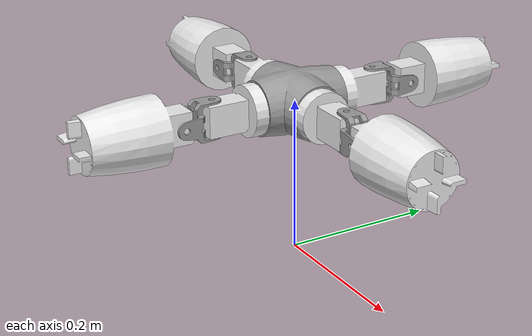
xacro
<?xml version="1.0"?>
<robot xmlns:xacro="http://www.ros.org/wiki/xacro"
       xmlns:gazebo="http://playerstage.sourceforge.net/gazebo/xmlschema/#gz"
       xmlns:model="http://playerstage.sourceforge.net/gazebo/xmlschema/#model"
       xmlns:interface="http://playerstage.sourceforge.net/gazebo/xmlschema/#interface"
       xmlns:body="http://playerstage.sourceforge.net/gazebo/xmlschema/#body"
       xmlns:geom="http://playerstage.sourceforge.net/gazebo/xmlschema/#geom"
       xmlns:joint="http://playerstage.sourceforge.net/gazebo/xmlschema/#joint"
       xmlns:controller="http://playerstage.sourceforge.net/gazebo/xmlschema/#controller"
       name="Fable_robot">

<xacro:property name="pi" value="3.1415926535897931" />
<xacro:property name="Nogravity" value="False" />  <!-- gravity -->

<xacro:property name="d1" value=".1103" /> <!-- 4way branch longitud-->
<xacro:property name="l1" value=".06" />   <!-- dist between short link and neck origins -->
<xacro:property name="l2" value=".0452" /> <!-- dist between neck and base origins -->
<xacro:property name="m1" value=".300" />  <!-- mass of long link  .447-->
<xacro:property name="m2" value=".017" />  <!-- mass of neck_link-->
<xacro:property name="m3" value=".1" />  <!-- mass of short link  .164-->
<xacro:property name="m4" value=".45" />  <!-- mass of 4wayBranch  .276-->
<xacro:property name="h1" value=".2" />    <!-- Inicial hight -->
<xacro:property name="AXdamping" value="0.15" />  <!-- Servo AX12 damping    0.15 (Nms)/rad    -->
<xacro:property name="AXfriction" value="0.13"/> <!-- Servo AX12 friction  0.13 Nm -->
<xacro:property name="maxeffort" value="1.18" />  <!-- Servo AX12 max effort  (Nm) -->
<xacro:property name="maxvelocity" value="12" />  <!-- Servo AX12 max velocity (rads)-->

<link name="dummy">
</link>

<link name="way4_branch">
      <visual>
         <geometry>
            <mesh filename="package://fable/meshes/4way-gazebo.stl" scale="0.001 0.001 0.001"/>
         </geometry>
         <origin xyz="0 0 ${h1}" rpy="0 0 0" />
      </visual>

      <collision>
         <geometry>
            <mesh filename="package://fable/meshes/4way-gazebo.stl" scale="0.001 0.001 0.001"/>
         </geometry>
         <origin xyz="0 0 ${h1}" rpy="0 0 0" />
      </collision>

      <inertial>
	 <origin xyz="0 0 ${h1}" rpy="0 0 0" />
         <mass value="${m4}" />
         <inertia ixx="0.00047"  ixy="0.0"  ixz="0.0"
                             iyy="0.00047"  iyz="0.0"
                                        izz="0.0005" />
      </inertial>
</link>

<joint name="dummy_joint" type="fixed">
   <parent link="dummy"/>
   <child link="way4_branch"/>
</joint>

<xacro:macro name="DOF2" params="prefix refx refy turnx turny turnz mycolor">

   <link name="${prefix}_short_link">
      <visual>
         <geometry>
	     <mesh filename="package://fable/meshes/2dof-jm-top.stl" scale="0.001 0.001 0.001"/>
         </geometry>
	 <origin xyz="0 0 0" rpy="${pi} 0 0" />
      </visual>

      <collision>
         <geometry>
            <mesh filename="package://fable/meshes/2dof-jm-top.stl" scale="0.001 0.001 0.001"/>
         </geometry>
	 <origin xyz="0 0 0" rpy="${pi} 0 0" />
      </collision>

      <inertial>
	 <origin xyz="0 0 .03" rpy="0 0 0" />
         <mass value="${m3}" />
         <inertia ixx="0.00027"  ixy="0.0"  ixz="0.0"
                             iyy="0.00027"  iyz="0.0"
                                        izz="0.0002" />
      </inertial>
   </link>

   <link name="${prefix}_neck_link">
      <visual>
         <geometry>
	   <mesh filename="package://fable/meshes/neck-2dof-simple.stl" scale="0.001 0.001 0.001"/>
         </geometry>
         <origin xyz="0 0 0" rpy="0 0 0" />
      </visual>

      <collision>
         <geometry>
           <mesh filename="package://fable/meshes/neck-2dof-simple.stl" scale="0.001 0.001 0.001"/>
         </geometry>
         <origin xyz="0 0 0" rpy="0 0 0" />
      </collision>

      <inertial>
	 <origin xyz="0 0 .022" rpy="0 0 0" />
         <mass value="${m2}" />
         <inertia ixx="0.0000054"  ixy="0.0"  ixz="0.0"
                             iyy="0.0000054"  iyz="0.0"
                                        izz="0.0000058" />
      </inertial>
   </link>

   <link name="${prefix}_base_link">   <!--  long_link  -->
      <visual>
         <geometry>
	   <mesh filename="package://fable/meshes/2dof-bottom.stl" scale="0.001 0.001 0.001"/>
         </geometry>
	 <origin xyz="0 0 0" rpy="${-pi} 0 ${-pi}" />
      </visual>

      <collision>
         <geometry>
            <mesh filename="package://fable/meshes/2dof-bottom.stl" scale="0.001 0.001 0.001"/>
         </geometry>
	 <origin xyz="0 0 0" rpy="${-pi} 0 ${-pi}" />
      </collision>

      <inertial>
	 <origin xyz="0 0 0.055" rpy="0 0 0" />
	 <mass value="${m1}" />
         <inertia ixx="0.0008"  ixy="0.0"  ixz="0.0"
                               iyy="0.0008"  iyz="0.0"
                                          izz="0.0009" />
      </inertial>
   </link>

<!-- fix joints for each one of the legs and the 4 way branch -->
   <joint name="${prefix}_fix_joint" type="fixed">
      <parent link="way4_branch"/>
      <child link="${prefix}_short_link"/>
      <origin xyz="${refx*(d1/2)} ${refy*(d1/2)} ${h1}" rpy="${turnx*(pi/2)} ${turny*(pi/2)} ${turnz*(pi/2)}" />
   </joint>

   <joint name="${prefix}_motor_short" type="revolute">
      <limit effort="${maxeffort}" lower="-1.57" upper="1.57" velocity="${maxvelocity}"/>
      <dynamics damping="${AXdamping}" friction="${AXfriction}"/>
      <parent link="${prefix}_short_link"/>
      <child link="${prefix}_neck_link"/>
      <origin xyz="0 0 ${l1}" rpy="0 0 0" />   <!-- offset and angle from parent to child -->
      <axis xyz="${turny} ${turnx} 0" />			       <!-- axis of rotation -->
   </joint>

   <joint name="${prefix}_motor_base" type="revolute">
      <limit effort="${maxeffort}" lower="-1.57" upper="1.57" velocity="${maxvelocity}"/>
      <dynamics damping="${AXdamping}" friction="${AXfriction}"/>
      <parent link="${prefix}_neck_link"/>
      <child link="${prefix}_base_link"/>
      <origin xyz="0 0 ${l2}" rpy="0 0 0" />   <!-- offset and angle from grandparent to child   -->
      <axis xyz="${turnx} ${turny} 0" />			       <!-- axis of rotation -->
   </joint>

    <!-- Transmission is important to link the joints and the controller -->
   <transmission name="${prefix}_motor_base_trans" type="pr2_mechanism_model/SimpleTransmission">
        <actuator name="${prefix}_motor_base_actuator" />
        <joint name="${prefix}_motor_base" />
        <mechanicalReduction>1</mechanicalReduction>
    </transmission>

   <transmission name="${prefix}_motor_short_trans" type="pr2_mechanism_model/SimpleTransmission">
        <actuator name="${prefix}_motor_short_actuator" />
        <joint name="${prefix}_motor_short" />
        <mechanicalReduction>1</mechanicalReduction>
   </transmission>

   <!-- Gazebo plugin! here one can used the gazebo library -->
   <gazebo reference="${prefix}_base_link">
      <material>Gazebo/White</material>
      <turnGravityOff>${Nogravity}</turnGravityOff>
      <selfCollide>true</selfCollide>
   </gazebo>

   <gazebo reference="${prefix}_neck_link">
      <material>Gazebo/Grey</material>
      <turnGravityOff>${Nogravity}</turnGravityOff>
      <selfCollide>true</selfCollide>
   </gazebo>

   <gazebo reference="${prefix}_short_link">
      <material>Gazebo/White</material>
      <turnGravityOff>${Nogravity}</turnGravityOff>
      <selfCollide>true</selfCollide>
   </gazebo>
</xacro:macro>

<gazebo reference="way4_branch">
   <material>Gazebo/Grey</material>
   <turnGravityOff>${Nogravity}</turnGravityOff>
   <selfCollide>true</selfCollide>
</gazebo>

<gazebo>
  <controller:gazebo_ros_controller_manager name="gazebo_ros_controller_manager" plugin="libgazebo_ros_controller_manager.so">
    <alwaysOn>true</alwaysOn>
    <updateRate>1000.0</updateRate>
  </controller:gazebo_ros_controller_manager>
</gazebo>

<xacro:DOF2 prefix="right" refx="0" refy="1" turnx="0" turny="1" turnz="1" mycolor="Red"/>
<xacro:DOF2 prefix="left" refx="0" refy="-1" turnx="0" turny="-1" turnz="1" mycolor="Blue"/>
<xacro:DOF2 prefix="front" refx="1" refy="0" turnx="0" turny="1" turnz="0" mycolor="Red"/>
<xacro:DOF2 prefix="back" refx="-1" refy="0" turnx="0" turny="-1" turnz="0" mycolor="Red"/>

</robot>
